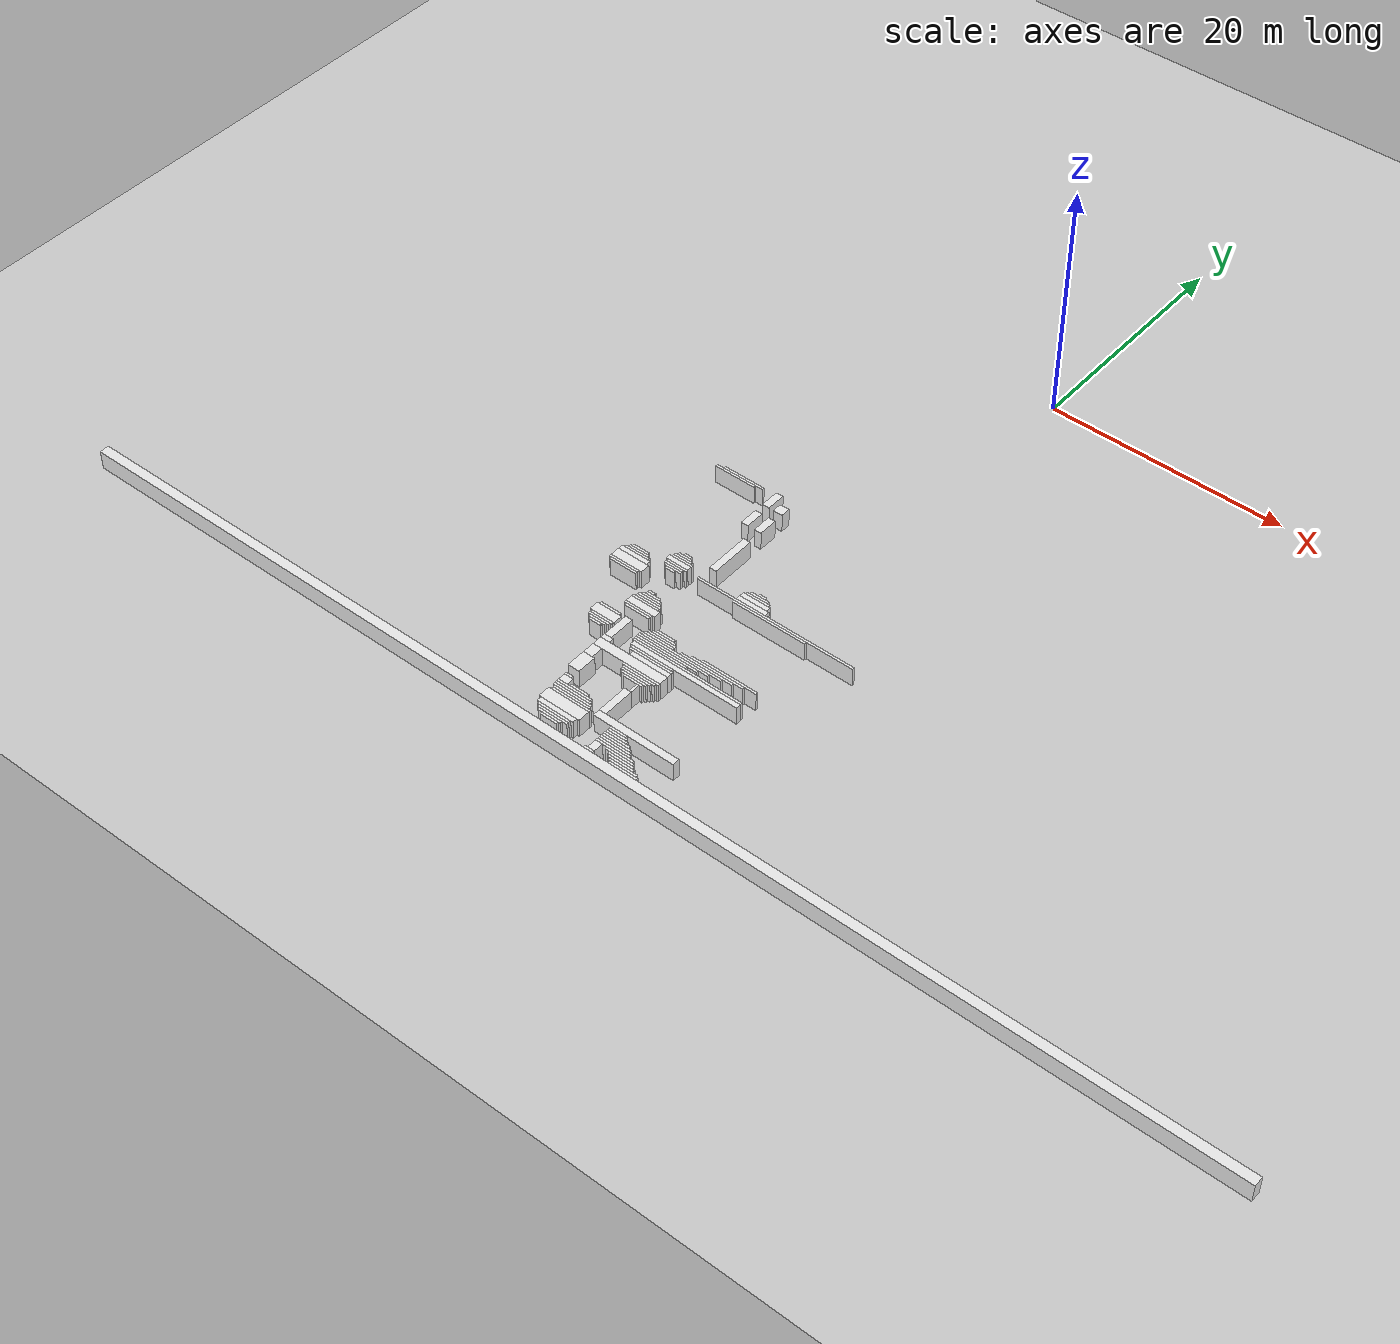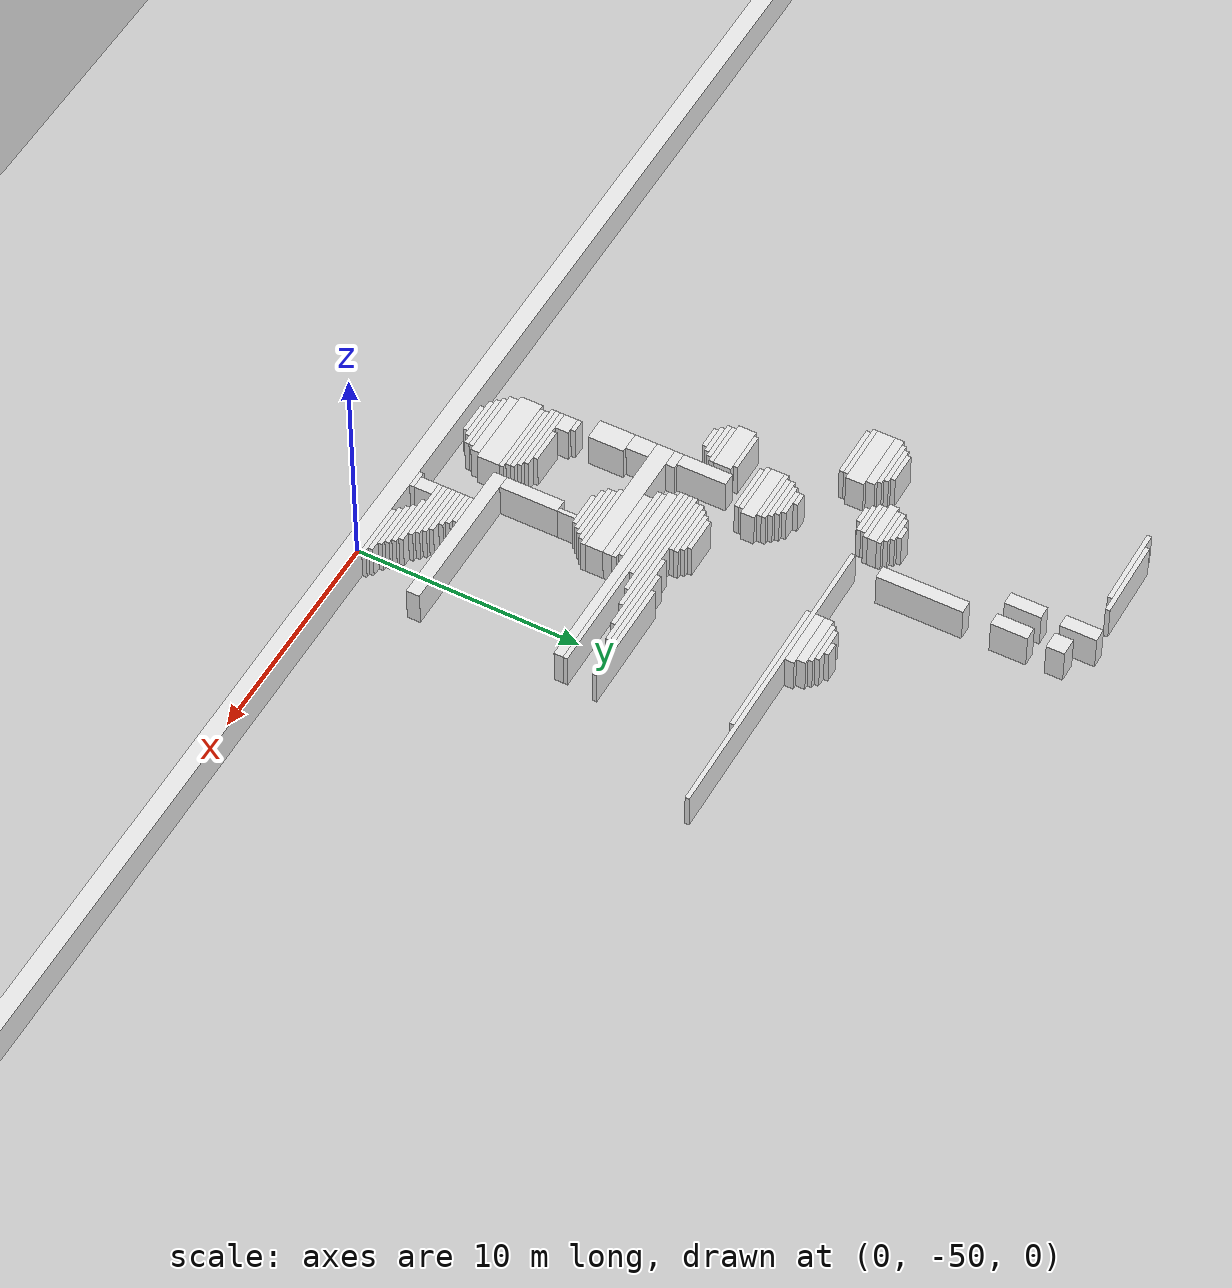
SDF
<sdf version="1.7">
 <world name="default">
  <model name="ground_plane">
   <static>1</static>
   <link name="link">
    <collision name="collision">
     <geometry><plane><normal>0 0 1</normal><size>120 120</size></plane></geometry>
    </collision>
    <visual name="visual">
     <geometry><plane><normal>0 0 1</normal><size>120 120</size></plane></geometry>
     <material>
      <script><uri>file://media/materials/scripts/gazebo.material</uri><name>Gazebo/Grey</name></script>
     </material>
    </visual>
   </link>
  </model>
  <model name="random_complex_01_model">
   <static>1</static>
   <link name="obs_2650">
    <pose>-12.0000 -22.1000 0.8000 0 0 0</pose>
    <collision name="obs_2650_col"><geometry><box><size>3.6000 0.2000 1.6000</size></box></geometry></collision>
    <visual name="obs_2650_vis">
     <geometry><box><size>3.6000 0.2000 1.6000</size></box></geometry>
     <material>
      <script><uri>file://media/materials/scripts/gazebo.material</uri><name>Gazebo/White</name></script>
     </material>
    </visual>
   </link>
   <link name="obs_2654">
    <pose>-12.6000 -22.3000 0.8000 0 0 0</pose>
    <collision name="obs_2654_col"><geometry><box><size>3.6000 0.2000 1.6000</size></box></geometry></collision>
    <visual name="obs_2654_vis">
     <geometry><box><size>3.6000 0.2000 1.6000</size></box></geometry>
     <material>
      <script><uri>file://media/materials/scripts/gazebo.material</uri><name>Gazebo/White</name></script>
     </material>
    </visual>
   </link>
   <link name="obs_2683">
    <pose>-8.9000 -22.6000 0.8000 0 0 0</pose>
    <collision name="obs_2683_col"><geometry><box><size>0.6000 1.6000 1.6000</size></box></geometry></collision>
    <visual name="obs_2683_vis">
     <geometry><box><size>0.6000 1.6000 1.6000</size></box></geometry>
     <material>
      <script><uri>file://media/materials/scripts/gazebo.material</uri><name>Gazebo/White</name></script>
     </material>
    </visual>
   </link>
   <link name="obs_2686">
    <pose>-7.8000 -23.0000 0.8000 0 0 0</pose>
    <collision name="obs_2686_col"><geometry><box><size>0.8000 0.8000 1.6000</size></box></geometry></collision>
    <visual name="obs_2686_vis">
     <geometry><box><size>0.8000 0.8000 1.6000</size></box></geometry>
     <material>
      <script><uri>file://media/materials/scripts/gazebo.material</uri><name>Gazebo/White</name></script>
     </material>
    </visual>
   </link>
   <link name="obs_2773">
    <pose>-8.9000 -25.0000 0.8000 0 0 0</pose>
    <collision name="obs_2773_col"><geometry><box><size>0.6000 1.6000 1.6000</size></box></geometry></collision>
    <visual name="obs_2773_vis">
     <geometry><box><size>0.6000 1.6000 1.6000</size></box></geometry>
     <material>
      <script><uri>file://media/materials/scripts/gazebo.material</uri><name>Gazebo/White</name></script>
     </material>
    </visual>
   </link>
   <link name="obs_2774">
    <pose>-7.7000 -25.0000 0.8000 0 0 0</pose>
    <collision name="obs_2774_col"><geometry><box><size>0.6000 1.6000 1.6000</size></box></geometry></collision>
    <visual name="obs_2774_vis">
     <geometry><box><size>0.6000 1.6000 1.6000</size></box></geometry>
     <material>
      <script><uri>file://media/materials/scripts/gazebo.material</uri><name>Gazebo/White</name></script>
     </material>
    </visual>
   </link>
   <link name="obs_2954">
    <pose>-7.7000 -28.9000 0.8000 0 0 0</pose>
    <collision name="obs_2954_col"><geometry><box><size>0.6000 3.8000 1.6000</size></box></geometry></collision>
    <visual name="obs_2954_vis">
     <geometry><box><size>0.6000 3.8000 1.6000</size></box></geometry>
     <material>
      <script><uri>file://media/materials/scripts/gazebo.material</uri><name>Gazebo/White</name></script>
     </material>
    </visual>
   </link>
   <link name="obs_2958">
    <pose>-3.3000 -30.7000 0.8000 0 0 0</pose>
    <collision name="obs_2958_col"><geometry><box><size>0.6000 0.2000 1.6000</size></box></geometry></collision>
    <visual name="obs_2958_vis">
     <geometry><box><size>0.6000 0.2000 1.6000</size></box></geometry>
     <material>
      <script><uri>file://media/materials/scripts/gazebo.material</uri><name>Gazebo/White</name></script>
     </material>
    </visual>
   </link>
   <link name="obs_2965">
    <pose>-9.9000 -30.9000 0.8000 0 0 0</pose>
    <collision name="obs_2965_col"><geometry><box><size>0.6000 0.2000 1.6000</size></box></geometry></collision>
    <visual name="obs_2965_vis">
     <geometry><box><size>0.6000 0.2000 1.6000</size></box></geometry>
     <material>
      <script><uri>file://media/materials/scripts/gazebo.material</uri><name>Gazebo/White</name></script>
     </material>
    </visual>
   </link>
   <link name="obs_2966">
    <pose>-3.4000 -30.9000 0.8000 0 0 0</pose>
    <collision name="obs_2966_col"><geometry><box><size>1.6000 0.2000 1.6000</size></box></geometry></collision>
    <visual name="obs_2966_vis">
     <geometry><box><size>1.6000 0.2000 1.6000</size></box></geometry>
     <material>
      <script><uri>file://media/materials/scripts/gazebo.material</uri><name>Gazebo/White</name></script>
     </material>
    </visual>
   </link>
   <link name="obs_2971">
    <pose>-10.0000 -31.1000 0.8000 0 0 0</pose>
    <collision name="obs_2971_col"><geometry><box><size>1.2000 0.2000 1.6000</size></box></geometry></collision>
    <visual name="obs_2971_vis">
     <geometry><box><size>1.2000 0.2000 1.6000</size></box></geometry>
     <material>
      <script><uri>file://media/materials/scripts/gazebo.material</uri><name>Gazebo/White</name></script>
     </material>
    </visual>
   </link>
   <link name="obs_2972">
    <pose>-3.4000 -31.1000 0.8000 0 0 0</pose>
    <collision name="obs_2972_col"><geometry><box><size>2.0000 0.2000 1.6000</size></box></geometry></collision>
    <visual name="obs_2972_vis">
     <geometry><box><size>2.0000 0.2000 1.6000</size></box></geometry>
     <material>
      <script><uri>file://media/materials/scripts/gazebo.material</uri><name>Gazebo/White</name></script>
     </material>
    </visual>
   </link>
   <link name="obs_2978">
    <pose>-10.0000 -31.3000 0.8000 0 0 0</pose>
    <collision name="obs_2978_col"><geometry><box><size>1.6000 0.2000 1.6000</size></box></geometry></collision>
    <visual name="obs_2978_vis">
     <geometry><box><size>1.6000 0.2000 1.6000</size></box></geometry>
     <material>
      <script><uri>file://media/materials/scripts/gazebo.material</uri><name>Gazebo/White</name></script>
     </material>
    </visual>
   </link>
   <link name="obs_2981">
    <pose>-3.4000 -31.4000 0.8000 0 0 0</pose>
    <collision name="obs_2981_col"><geometry><box><size>2.4000 0.4000 1.6000</size></box></geometry></collision>
    <visual name="obs_2981_vis">
     <geometry><box><size>2.4000 0.4000 1.6000</size></box></geometry>
     <material>
      <script><uri>file://media/materials/scripts/gazebo.material</uri><name>Gazebo/White</name></script>
     </material>
    </visual>
   </link>
   <link name="obs_2983">
    <pose>-9.9000 -31.5000 0.8000 0 0 0</pose>
    <collision name="obs_2983_col"><geometry><box><size>1.8000 0.2000 1.6000</size></box></geometry></collision>
    <visual name="obs_2983_vis">
     <geometry><box><size>1.8000 0.2000 1.6000</size></box></geometry>
     <material>
      <script><uri>file://media/materials/scripts/gazebo.material</uri><name>Gazebo/White</name></script>
     </material>
    </visual>
   </link>
   <link name="obs_2994">
    <pose>-10.0000 -31.8000 0.8000 0 0 0</pose>
    <collision name="obs_2994_col"><geometry><box><size>2.0000 0.4000 1.6000</size></box></geometry></collision>
    <visual name="obs_2994_vis">
     <geometry><box><size>2.0000 0.4000 1.6000</size></box></geometry>
     <material>
      <script><uri>file://media/materials/scripts/gazebo.material</uri><name>Gazebo/White</name></script>
     </material>
    </visual>
   </link>
   <link name="obs_2995">
    <pose>-3.3000 -31.8000 0.8000 0 0 0</pose>
    <collision name="obs_2995_col"><geometry><box><size>2.6000 0.4000 1.6000</size></box></geometry></collision>
    <visual name="obs_2995_vis">
     <geometry><box><size>2.6000 0.4000 1.6000</size></box></geometry>
     <material>
      <script><uri>file://media/materials/scripts/gazebo.material</uri><name>Gazebo/White</name></script>
     </material>
    </visual>
   </link>
   <link name="obs_3001">
    <pose>-9.9000 -32.1000 0.8000 0 0 0</pose>
    <collision name="obs_3001_col"><geometry><box><size>1.8000 0.2000 1.6000</size></box></geometry></collision>
    <visual name="obs_3001_vis">
     <geometry><box><size>1.8000 0.2000 1.6000</size></box></geometry>
     <material>
      <script><uri>file://media/materials/scripts/gazebo.material</uri><name>Gazebo/White</name></script>
     </material>
    </visual>
   </link>
   <link name="obs_3002">
    <pose>-1.1000 -32.1000 0.8000 0 0 0</pose>
    <collision name="obs_3002_col"><geometry><box><size>13.8000 0.2000 1.6000</size></box></geometry></collision>
    <visual name="obs_3002_vis">
     <geometry><box><size>13.8000 0.2000 1.6000</size></box></geometry>
     <material>
      <script><uri>file://media/materials/scripts/gazebo.material</uri><name>Gazebo/White</name></script>
     </material>
    </visual>
   </link>
   <link name="obs_3008">
    <pose>-10.0000 -32.3000 0.8000 0 0 0</pose>
    <collision name="obs_3008_col"><geometry><box><size>1.6000 0.2000 1.6000</size></box></geometry></collision>
    <visual name="obs_3008_vis">
     <geometry><box><size>1.6000 0.2000 1.6000</size></box></geometry>
     <material>
      <script><uri>file://media/materials/scripts/gazebo.material</uri><name>Gazebo/White</name></script>
     </material>
    </visual>
   </link>
   <link name="obs_3009">
    <pose>-1.4000 -32.3000 0.8000 0 0 0</pose>
    <collision name="obs_3009_col"><geometry><box><size>6.4000 0.2000 1.6000</size></box></geometry></collision>
    <visual name="obs_3009_vis">
     <geometry><box><size>6.4000 0.2000 1.6000</size></box></geometry>
     <material>
      <script><uri>file://media/materials/scripts/gazebo.material</uri><name>Gazebo/White</name></script>
     </material>
    </visual>
   </link>
   <link name="obs_3017">
    <pose>-12.9000 -32.5000 0.8000 0 0 0</pose>
    <collision name="obs_3017_col"><geometry><box><size>1.4000 0.2000 1.6000</size></box></geometry></collision>
    <visual name="obs_3017_vis">
     <geometry><box><size>1.4000 0.2000 1.6000</size></box></geometry>
     <material>
      <script><uri>file://media/materials/scripts/gazebo.material</uri><name>Gazebo/White</name></script>
     </material>
    </visual>
   </link>
   <link name="obs_3018">
    <pose>-9.9000 -32.5000 0.8000 0 0 0</pose>
    <collision name="obs_3018_col"><geometry><box><size>1.4000 0.2000 1.6000</size></box></geometry></collision>
    <visual name="obs_3018_vis">
     <geometry><box><size>1.4000 0.2000 1.6000</size></box></geometry>
     <material>
      <script><uri>file://media/materials/scripts/gazebo.material</uri><name>Gazebo/White</name></script>
     </material>
    </visual>
   </link>
   <link name="obs_3023">
    <pose>-12.9000 -32.7000 0.8000 0 0 0</pose>
    <collision name="obs_3023_col"><geometry><box><size>1.8000 0.2000 1.6000</size></box></geometry></collision>
    <visual name="obs_3023_vis">
     <geometry><box><size>1.8000 0.2000 1.6000</size></box></geometry>
     <material>
      <script><uri>file://media/materials/scripts/gazebo.material</uri><name>Gazebo/White</name></script>
     </material>
    </visual>
   </link>
   <link name="obs_3024">
    <pose>-10.0000 -32.7000 0.8000 0 0 0</pose>
    <collision name="obs_3024_col"><geometry><box><size>0.8000 0.2000 1.6000</size></box></geometry></collision>
    <visual name="obs_3024_vis">
     <geometry><box><size>0.8000 0.2000 1.6000</size></box></geometry>
     <material>
      <script><uri>file://media/materials/scripts/gazebo.material</uri><name>Gazebo/White</name></script>
     </material>
    </visual>
   </link>
   <link name="obs_3032">
    <pose>-12.9000 -32.9000 0.8000 0 0 0</pose>
    <collision name="obs_3032_col"><geometry><box><size>2.2000 0.2000 1.6000</size></box></geometry></collision>
    <visual name="obs_3032_vis">
     <geometry><box><size>2.2000 0.2000 1.6000</size></box></geometry>
     <material>
      <script><uri>file://media/materials/scripts/gazebo.material</uri><name>Gazebo/White</name></script>
     </material>
    </visual>
   </link>
   <link name="obs_3044">
    <pose>-12.9000 -33.2000 0.8000 0 0 0</pose>
    <collision name="obs_3044_col"><geometry><box><size>2.6000 0.4000 1.6000</size></box></geometry></collision>
    <visual name="obs_3044_vis">
     <geometry><box><size>2.6000 0.4000 1.6000</size></box></geometry>
     <material>
      <script><uri>file://media/materials/scripts/gazebo.material</uri><name>Gazebo/White</name></script>
     </material>
    </visual>
   </link>
   <link name="obs_3077">
    <pose>-12.8000 -33.8000 0.8000 0 0 0</pose>
    <collision name="obs_3077_col"><geometry><box><size>2.8000 0.8000 1.6000</size></box></geometry></collision>
    <visual name="obs_3077_vis">
     <geometry><box><size>2.8000 0.8000 1.6000</size></box></geometry>
     <material>
      <script><uri>file://media/materials/scripts/gazebo.material</uri><name>Gazebo/White</name></script>
     </material>
    </visual>
   </link>
   <link name="obs_3088">
    <pose>-12.9000 -34.3000 0.8000 0 0 0</pose>
    <collision name="obs_3088_col"><geometry><box><size>2.6000 0.2000 1.6000</size></box></geometry></collision>
    <visual name="obs_3088_vis">
     <geometry><box><size>2.6000 0.2000 1.6000</size></box></geometry>
     <material>
      <script><uri>file://media/materials/scripts/gazebo.material</uri><name>Gazebo/White</name></script>
     </material>
    </visual>
   </link>
   <link name="obs_3093">
    <pose>-12.8000 -34.5000 0.8000 0 0 0</pose>
    <collision name="obs_3093_col"><geometry><box><size>2.4000 0.2000 1.6000</size></box></geometry></collision>
    <visual name="obs_3093_vis">
     <geometry><box><size>2.4000 0.2000 1.6000</size></box></geometry>
     <material>
      <script><uri>file://media/materials/scripts/gazebo.material</uri><name>Gazebo/White</name></script>
     </material>
    </visual>
   </link>
   <link name="obs_3124">
    <pose>-9.5000 -35.3000 0.8000 0 0 0</pose>
    <collision name="obs_3124_col"><geometry><box><size>0.6000 0.2000 1.6000</size></box></geometry></collision>
    <visual name="obs_3124_vis">
     <geometry><box><size>0.6000 0.2000 1.6000</size></box></geometry>
     <material>
      <script><uri>file://media/materials/scripts/gazebo.material</uri><name>Gazebo/White</name></script>
     </material>
    </visual>
   </link>
   <link name="obs_3133">
    <pose>-9.2000 -35.5000 0.8000 0 0 0</pose>
    <collision name="obs_3133_col"><geometry><box><size>1.2000 0.2000 1.6000</size></box></geometry></collision>
    <visual name="obs_3133_vis">
     <geometry><box><size>1.2000 0.2000 1.6000</size></box></geometry>
     <material>
      <script><uri>file://media/materials/scripts/gazebo.material</uri><name>Gazebo/White</name></script>
     </material>
    </visual>
   </link>
   <link name="obs_3143">
    <pose>-9.2000 -35.7000 0.8000 0 0 0</pose>
    <collision name="obs_3143_col"><geometry><box><size>1.6000 0.2000 1.6000</size></box></geometry></collision>
    <visual name="obs_3143_vis">
     <geometry><box><size>1.6000 0.2000 1.6000</size></box></geometry>
     <material>
      <script><uri>file://media/materials/scripts/gazebo.material</uri><name>Gazebo/White</name></script>
     </material>
    </visual>
   </link>
   <link name="obs_3149">
    <pose>-9.2000 -35.9000 0.8000 0 0 0</pose>
    <collision name="obs_3149_col"><geometry><box><size>2.0000 0.2000 1.6000</size></box></geometry></collision>
    <visual name="obs_3149_vis">
     <geometry><box><size>2.0000 0.2000 1.6000</size></box></geometry>
     <material>
      <script><uri>file://media/materials/scripts/gazebo.material</uri><name>Gazebo/White</name></script>
     </material>
    </visual>
   </link>
   <link name="obs_3158">
    <pose>-9.1000 -36.1000 0.8000 0 0 0</pose>
    <collision name="obs_3158_col"><geometry><box><size>2.2000 0.2000 1.6000</size></box></geometry></collision>
    <visual name="obs_3158_vis">
     <geometry><box><size>2.2000 0.2000 1.6000</size></box></geometry>
     <material>
      <script><uri>file://media/materials/scripts/gazebo.material</uri><name>Gazebo/White</name></script>
     </material>
    </visual>
   </link>
   <link name="obs_3165">
    <pose>-9.2000 -36.3000 0.8000 0 0 0</pose>
    <collision name="obs_3165_col"><geometry><box><size>2.4000 0.2000 1.6000</size></box></geometry></collision>
    <visual name="obs_3165_vis">
     <geometry><box><size>2.4000 0.2000 1.6000</size></box></geometry>
     <material>
      <script><uri>file://media/materials/scripts/gazebo.material</uri><name>Gazebo/White</name></script>
     </material>
    </visual>
   </link>
   <link name="obs_3182">
    <pose>-9.1000 -36.7000 0.8000 0 0 0</pose>
    <collision name="obs_3182_col"><geometry><box><size>2.6000 0.6000 1.6000</size></box></geometry></collision>
    <visual name="obs_3182_vis">
     <geometry><box><size>2.6000 0.6000 1.6000</size></box></geometry>
     <material>
      <script><uri>file://media/materials/scripts/gazebo.material</uri><name>Gazebo/White</name></script>
     </material>
    </visual>
   </link>
   <link name="obs_3190">
    <pose>-9.2000 -37.1000 0.8000 0 0 0</pose>
    <collision name="obs_3190_col"><geometry><box><size>2.4000 0.2000 1.6000</size></box></geometry></collision>
    <visual name="obs_3190_vis">
     <geometry><box><size>2.4000 0.2000 1.6000</size></box></geometry>
     <material>
      <script><uri>file://media/materials/scripts/gazebo.material</uri><name>Gazebo/White</name></script>
     </material>
    </visual>
   </link>
   <link name="obs_3200">
    <pose>-9.1000 -37.3000 0.8000 0 0 0</pose>
    <collision name="obs_3200_col"><geometry><box><size>2.2000 0.2000 1.6000</size></box></geometry></collision>
    <visual name="obs_3200_vis">
     <geometry><box><size>2.2000 0.2000 1.6000</size></box></geometry>
     <material>
      <script><uri>file://media/materials/scripts/gazebo.material</uri><name>Gazebo/White</name></script>
     </material>
    </visual>
   </link>
   <link name="obs_3223">
    <pose>-6.0000 -37.9000 0.8000 0 0 0</pose>
    <collision name="obs_3223_col"><geometry><box><size>1.6000 0.2000 1.6000</size></box></geometry></collision>
    <visual name="obs_3223_vis">
     <geometry><box><size>1.6000 0.2000 1.6000</size></box></geometry>
     <material>
      <script><uri>file://media/materials/scripts/gazebo.material</uri><name>Gazebo/White</name></script>
     </material>
    </visual>
   </link>
   <link name="obs_3231">
    <pose>-6.0000 -38.1000 0.8000 0 0 0</pose>
    <collision name="obs_3231_col"><geometry><box><size>2.0000 0.2000 1.6000</size></box></geometry></collision>
    <visual name="obs_3231_vis">
     <geometry><box><size>2.0000 0.2000 1.6000</size></box></geometry>
     <material>
      <script><uri>file://media/materials/scripts/gazebo.material</uri><name>Gazebo/White</name></script>
     </material>
    </visual>
   </link>
   <link name="obs_3232">
    <pose>-0.2000 -38.1000 0.8000 0 0 0</pose>
    <collision name="obs_3232_col"><geometry><box><size>4.8000 0.2000 1.6000</size></box></geometry></collision>
    <visual name="obs_3232_vis">
     <geometry><box><size>4.8000 0.2000 1.6000</size></box></geometry>
     <material>
      <script><uri>file://media/materials/scripts/gazebo.material</uri><name>Gazebo/White</name></script>
     </material>
    </visual>
   </link>
   <link name="obs_3239">
    <pose>-10.7000 -38.3000 0.8000 0 0 0</pose>
    <collision name="obs_3239_col"><geometry><box><size>1.8000 0.2000 1.6000</size></box></geometry></collision>
    <visual name="obs_3239_vis">
     <geometry><box><size>1.8000 0.2000 1.6000</size></box></geometry>
     <material>
      <script><uri>file://media/materials/scripts/gazebo.material</uri><name>Gazebo/White</name></script>
     </material>
    </visual>
   </link>
   <link name="obs_3240">
    <pose>-6.0000 -38.3000 0.8000 0 0 0</pose>
    <collision name="obs_3240_col"><geometry><box><size>2.4000 0.2000 1.6000</size></box></geometry></collision>
    <visual name="obs_3240_vis">
     <geometry><box><size>2.4000 0.2000 1.6000</size></box></geometry>
     <material>
      <script><uri>file://media/materials/scripts/gazebo.material</uri><name>Gazebo/White</name></script>
     </material>
    </visual>
   </link>
   <link name="obs_3241">
    <pose>-1.1000 -38.3000 0.8000 0 0 0</pose>
    <collision name="obs_3241_col"><geometry><box><size>4.6000 0.2000 1.6000</size></box></geometry></collision>
    <visual name="obs_3241_vis">
     <geometry><box><size>4.6000 0.2000 1.6000</size></box></geometry>
     <material>
      <script><uri>file://media/materials/scripts/gazebo.material</uri><name>Gazebo/White</name></script>
     </material>
    </visual>
   </link>
   <link name="obs_3248">
    <pose>-6.1000 -38.5000 0.8000 0 0 0</pose>
    <collision name="obs_3248_col"><geometry><box><size>2.6000 0.2000 1.6000</size></box></geometry></collision>
    <visual name="obs_3248_vis">
     <geometry><box><size>2.6000 0.2000 1.6000</size></box></geometry>
     <material>
      <script><uri>file://media/materials/scripts/gazebo.material</uri><name>Gazebo/White</name></script>
     </material>
    </visual>
   </link>
   <link name="obs_3249">
    <pose>-1.9000 -38.5000 0.8000 0 0 0</pose>
    <collision name="obs_3249_col"><geometry><box><size>4.6000 0.2000 1.6000</size></box></geometry></collision>
    <visual name="obs_3249_vis">
     <geometry><box><size>4.6000 0.2000 1.6000</size></box></geometry>
     <material>
      <script><uri>file://media/materials/scripts/gazebo.material</uri><name>Gazebo/White</name></script>
     </material>
    </visual>
   </link>
   <link name="obs_3254">
    <pose>-3.9000 -38.7000 0.8000 0 0 0</pose>
    <collision name="obs_3254_col"><geometry><box><size>7.0000 0.2000 1.6000</size></box></geometry></collision>
    <visual name="obs_3254_vis">
     <geometry><box><size>7.0000 0.2000 1.6000</size></box></geometry>
     <material>
      <script><uri>file://media/materials/scripts/gazebo.material</uri><name>Gazebo/White</name></script>
     </material>
    </visual>
   </link>
   <link name="obs_3261">
    <pose>-4.5000 -38.9000 0.8000 0 0 0</pose>
    <collision name="obs_3261_col"><geometry><box><size>6.2000 0.2000 1.6000</size></box></geometry></collision>
    <visual name="obs_3261_vis">
     <geometry><box><size>6.2000 0.2000 1.6000</size></box></geometry>
     <material>
      <script><uri>file://media/materials/scripts/gazebo.material</uri><name>Gazebo/White</name></script>
     </material>
    </visual>
   </link>
   <link name="obs_3266">
    <pose>-10.7000 -38.8000 0.8000 0 0 0</pose>
    <collision name="obs_3266_col"><geometry><box><size>2.2000 0.8000 1.6000</size></box></geometry></collision>
    <visual name="obs_3266_vis">
     <geometry><box><size>2.2000 0.8000 1.6000</size></box></geometry>
     <material>
      <script><uri>file://media/materials/scripts/gazebo.material</uri><name>Gazebo/White</name></script>
     </material>
    </visual>
   </link>
   <link name="obs_3269">
    <pose>-4.9000 -39.1000 0.8000 0 0 0</pose>
    <collision name="obs_3269_col"><geometry><box><size>5.4000 0.2000 1.6000</size></box></geometry></collision>
    <visual name="obs_3269_vis">
     <geometry><box><size>5.4000 0.2000 1.6000</size></box></geometry>
     <material>
      <script><uri>file://media/materials/scripts/gazebo.material</uri><name>Gazebo/White</name></script>
     </material>
    </visual>
   </link>
   <link name="obs_3276">
    <pose>-10.6000 -39.3000 0.8000 0 0 0</pose>
    <collision name="obs_3276_col"><geometry><box><size>2.0000 0.2000 1.6000</size></box></geometry></collision>
    <visual name="obs_3276_vis">
     <geometry><box><size>2.0000 0.2000 1.6000</size></box></geometry>
     <material>
      <script><uri>file://media/materials/scripts/gazebo.material</uri><name>Gazebo/White</name></script>
     </material>
    </visual>
   </link>
   <link name="obs_3277">
    <pose>-5.3000 -39.3000 0.8000 0 0 0</pose>
    <collision name="obs_3277_col"><geometry><box><size>4.6000 0.2000 1.6000</size></box></geometry></collision>
    <visual name="obs_3277_vis">
     <geometry><box><size>4.6000 0.2000 1.6000</size></box></geometry>
     <material>
      <script><uri>file://media/materials/scripts/gazebo.material</uri><name>Gazebo/White</name></script>
     </material>
    </visual>
   </link>
   <link name="obs_3280">
    <pose>-10.7000 -39.5000 0.8000 0 0 0</pose>
    <collision name="obs_3280_col"><geometry><box><size>1.8000 0.2000 1.6000</size></box></geometry></collision>
    <visual name="obs_3280_vis">
     <geometry><box><size>1.8000 0.2000 1.6000</size></box></geometry>
     <material>
      <script><uri>file://media/materials/scripts/gazebo.material</uri><name>Gazebo/White</name></script>
     </material>
    </visual>
   </link>
   <link name="obs_3281">
    <pose>-2.8000 -39.5000 0.8000 0 0 0</pose>
    <collision name="obs_3281_col"><geometry><box><size>9.6000 0.2000 1.6000</size></box></geometry></collision>
    <visual name="obs_3281_vis">
     <geometry><box><size>9.6000 0.2000 1.6000</size></box></geometry>
     <material>
      <script><uri>file://media/materials/scripts/gazebo.material</uri><name>Gazebo/White</name></script>
     </material>
    </visual>
   </link>
   <link name="obs_3289">
    <pose>-10.7000 -39.7000 0.8000 0 0 0</pose>
    <collision name="obs_3289_col"><geometry><box><size>1.4000 0.2000 1.6000</size></box></geometry></collision>
    <visual name="obs_3289_vis">
     <geometry><box><size>1.4000 0.2000 1.6000</size></box></geometry>
     <material>
      <script><uri>file://media/materials/scripts/gazebo.material</uri><name>Gazebo/White</name></script>
     </material>
    </visual>
   </link>
   <link name="obs_3292">
    <pose>-2.7000 -39.8000 0.8000 0 0 0</pose>
    <collision name="obs_3292_col"><geometry><box><size>9.4000 0.4000 1.6000</size></box></geometry></collision>
    <visual name="obs_3292_vis">
     <geometry><box><size>9.4000 0.4000 1.6000</size></box></geometry>
     <material>
      <script><uri>file://media/materials/scripts/gazebo.material</uri><name>Gazebo/White</name></script>
     </material>
    </visual>
   </link>
   <link name="obs_3295">
    <pose>-10.7000 -39.9000 0.8000 0 0 0</pose>
    <collision name="obs_3295_col"><geometry><box><size>1.0000 0.2000 1.6000</size></box></geometry></collision>
    <visual name="obs_3295_vis">
     <geometry><box><size>1.0000 0.2000 1.6000</size></box></geometry>
     <material>
      <script><uri>file://media/materials/scripts/gazebo.material</uri><name>Gazebo/White</name></script>
     </material>
    </visual>
   </link>
   <link name="obs_3302">
    <pose>-5.4000 -40.1000 0.8000 0 0 0</pose>
    <collision name="obs_3302_col"><geometry><box><size>3.6000 0.2000 1.6000</size></box></geometry></collision>
    <visual name="obs_3302_vis">
     <geometry><box><size>3.6000 0.2000 1.6000</size></box></geometry>
     <material>
      <script><uri>file://media/materials/scripts/gazebo.material</uri><name>Gazebo/White</name></script>
     </material>
    </visual>
   </link>
   <link name="obs_3306">
    <pose>-9.1000 -39.3000 0.8000 0 0 0</pose>
    <collision name="obs_3306_col"><geometry><box><size>0.6000 2.2000 1.6000</size></box></geometry></collision>
    <visual name="obs_3306_vis">
     <geometry><box><size>0.6000 2.2000 1.6000</size></box></geometry>
     <material>
      <script><uri>file://media/materials/scripts/gazebo.material</uri><name>Gazebo/White</name></script>
     </material>
    </visual>
   </link>
   <link name="obs_3310">
    <pose>-5.3000 -40.3000 0.8000 0 0 0</pose>
    <collision name="obs_3310_col"><geometry><box><size>3.8000 0.2000 1.6000</size></box></geometry></collision>
    <visual name="obs_3310_vis">
     <geometry><box><size>3.8000 0.2000 1.6000</size></box></geometry>
     <material>
      <script><uri>file://media/materials/scripts/gazebo.material</uri><name>Gazebo/White</name></script>
     </material>
    </visual>
   </link>
   <link name="obs_3321">
    <pose>-9.0000 -40.6000 0.8000 0 0 0</pose>
    <collision name="obs_3321_col"><geometry><box><size>0.8000 0.4000 1.6000</size></box></geometry></collision>
    <visual name="obs_3321_vis">
     <geometry><box><size>0.8000 0.4000 1.6000</size></box></geometry>
     <material>
      <script><uri>file://media/materials/scripts/gazebo.material</uri><name>Gazebo/White</name></script>
     </material>
    </visual>
   </link>
   <link name="obs_3322">
    <pose>-5.1000 -40.6000 0.8000 0 0 0</pose>
    <collision name="obs_3322_col"><geometry><box><size>3.4000 0.4000 1.6000</size></box></geometry></collision>
    <visual name="obs_3322_vis">
     <geometry><box><size>3.4000 0.4000 1.6000</size></box></geometry>
     <material>
      <script><uri>file://media/materials/scripts/gazebo.material</uri><name>Gazebo/White</name></script>
     </material>
    </visual>
   </link>
   <link name="obs_3354">
    <pose>-6.4000 -41.2000 0.8000 0 0 0</pose>
    <collision name="obs_3354_col"><geometry><box><size>6.0000 0.8000 1.6000</size></box></geometry></collision>
    <visual name="obs_3354_vis">
     <geometry><box><size>6.0000 0.8000 1.6000</size></box></geometry>
     <material>
      <script><uri>file://media/materials/scripts/gazebo.material</uri><name>Gazebo/White</name></script>
     </material>
    </visual>
   </link>
   <link name="obs_3365">
    <pose>-5.0000 -41.7000 0.8000 0 0 0</pose>
    <collision name="obs_3365_col"><geometry><box><size>3.2000 0.2000 1.6000</size></box></geometry></collision>
    <visual name="obs_3365_vis">
     <geometry><box><size>3.2000 0.2000 1.6000</size></box></geometry>
     <material>
      <script><uri>file://media/materials/scripts/gazebo.material</uri><name>Gazebo/White</name></script>
     </material>
    </visual>
   </link>
   <link name="obs_3374">
    <pose>-5.0000 -41.9000 0.8000 0 0 0</pose>
    <collision name="obs_3374_col"><geometry><box><size>2.8000 0.2000 1.6000</size></box></geometry></collision>
    <visual name="obs_3374_vis">
     <geometry><box><size>2.8000 0.2000 1.6000</size></box></geometry>
     <material>
      <script><uri>file://media/materials/scripts/gazebo.material</uri><name>Gazebo/White</name></script>
     </material>
    </visual>
   </link>
   <link name="obs_3381">
    <pose>-5.1000 -42.1000 0.8000 0 0 0</pose>
    <collision name="obs_3381_col"><geometry><box><size>2.6000 0.2000 1.6000</size></box></geometry></collision>
    <visual name="obs_3381_vis">
     <geometry><box><size>2.6000 0.2000 1.6000</size></box></geometry>
     <material>
      <script><uri>file://media/materials/scripts/gazebo.material</uri><name>Gazebo/White</name></script>
     </material>
    </visual>
   </link>
   <link name="obs_3389">
    <pose>-5.1000 -42.3000 0.8000 0 0 0</pose>
    <collision name="obs_3389_col"><geometry><box><size>2.2000 0.2000 1.6000</size></box></geometry></collision>
    <visual name="obs_3389_vis">
     <geometry><box><size>2.2000 0.2000 1.6000</size></box></geometry>
     <material>
      <script><uri>file://media/materials/scripts/gazebo.material</uri><name>Gazebo/White</name></script>
     </material>
    </visual>
   </link>
   <link name="obs_3394">
    <pose>-9.0000 -42.1000 0.8000 0 0 0</pose>
    <collision name="obs_3394_col"><geometry><box><size>0.8000 1.0000 1.6000</size></box></geometry></collision>
    <visual name="obs_3394_vis">
     <geometry><box><size>0.8000 1.0000 1.6000</size></box></geometry>
     <material>
      <script><uri>file://media/materials/scripts/gazebo.material</uri><name>Gazebo/White</name></script>
     </material>
    </visual>
   </link>
   <link name="obs_3397">
    <pose>-5.0000 -42.5000 0.8000 0 0 0</pose>
    <collision name="obs_3397_col"><geometry><box><size>1.6000 0.2000 1.6000</size></box></geometry></collision>
    <visual name="obs_3397_vis">
     <geometry><box><size>1.6000 0.2000 1.6000</size></box></geometry>
     <material>
      <script><uri>file://media/materials/scripts/gazebo.material</uri><name>Gazebo/White</name></script>
     </material>
    </visual>
   </link>
   <link name="obs_3422">
    <pose>-4.5000 -43.0000 0.8000 0 0 0</pose>
    <collision name="obs_3422_col"><geometry><box><size>0.2000 0.8000 1.6000</size></box></geometry></collision>
    <visual name="obs_3422_vis">
     <geometry><box><size>0.2000 0.8000 1.6000</size></box></geometry>
     <material>
      <script><uri>file://media/materials/scripts/gazebo.material</uri><name>Gazebo/White</name></script>
     </material>
    </visual>
   </link>
   <link name="obs_3443">
    <pose>-8.9000 -43.4000 0.8000 0 0 0</pose>
    <collision name="obs_3443_col"><geometry><box><size>1.0000 1.6000 1.6000</size></box></geometry></collision>
    <visual name="obs_3443_vis">
     <geometry><box><size>1.0000 1.6000 1.6000</size></box></geometry>
     <material>
      <script><uri>file://media/materials/scripts/gazebo.material</uri><name>Gazebo/White</name></script>
     </material>
    </visual>
   </link>
   <link name="obs_3466">
    <pose>-8.7000 -44.9000 0.8000 0 0 0</pose>
    <collision name="obs_3466_col"><geometry><box><size>0.6000 0.2000 1.6000</size></box></geometry></collision>
    <visual name="obs_3466_vis">
     <geometry><box><size>0.6000 0.2000 1.6000</size></box></geometry>
     <material>
      <script><uri>file://media/materials/scripts/gazebo.material</uri><name>Gazebo/White</name></script>
     </material>
    </visual>
   </link>
   <link name="obs_3488">
    <pose>-8.6000 -45.3000 0.8000 0 0 0</pose>
    <collision name="obs_3488_col"><geometry><box><size>0.8000 0.6000 1.6000</size></box></geometry></collision>
    <visual name="obs_3488_vis">
     <geometry><box><size>0.8000 0.6000 1.6000</size></box></geometry>
     <material>
      <script><uri>file://media/materials/scripts/gazebo.material</uri><name>Gazebo/White</name></script>
     </material>
    </visual>
   </link>
   <link name="obs_3491">
    <pose>-7.2000 -45.5000 0.8000 0 0 0</pose>
    <collision name="obs_3491_col"><geometry><box><size>1.6000 0.2000 1.6000</size></box></geometry></collision>
    <visual name="obs_3491_vis">
     <geometry><box><size>1.6000 0.2000 1.6000</size></box></geometry>
     <material>
      <script><uri>file://media/materials/scripts/gazebo.material</uri><name>Gazebo/White</name></script>
     </material>
    </visual>
   </link>
   <link name="obs_3501">
    <pose>-7.5000 -45.7000 0.8000 0 0 0</pose>
    <collision name="obs_3501_col"><geometry><box><size>3.0000 0.2000 1.6000</size></box></geometry></collision>
    <visual name="obs_3501_vis">
     <geometry><box><size>3.0000 0.2000 1.6000</size></box></geometry>
     <material>
      <script><uri>file://media/materials/scripts/gazebo.material</uri><name>Gazebo/White</name></script>
     </material>
    </visual>
   </link>
   <link name="obs_3505">
    <pose>-4.7000 -44.7000 0.8000 0 0 0</pose>
    <collision name="obs_3505_col"><geometry><box><size>0.6000 2.6000 1.6000</size></box></geometry></collision>
    <visual name="obs_3505_vis">
     <geometry><box><size>0.6000 2.6000 1.6000</size></box></geometry>
     <material>
      <script><uri>file://media/materials/scripts/gazebo.material</uri><name>Gazebo/White</name></script>
     </material>
    </visual>
   </link>
   <link name="obs_3509">
    <pose>-7.4000 -45.9000 0.8000 0 0 0</pose>
    <collision name="obs_3509_col"><geometry><box><size>3.2000 0.2000 1.6000</size></box></geometry></collision>
    <visual name="obs_3509_vis">
     <geometry><box><size>3.2000 0.2000 1.6000</size></box></geometry>
     <material>
      <script><uri>file://media/materials/scripts/gazebo.material</uri><name>Gazebo/White</name></script>
     </material>
    </visual>
   </link>
   <link name="obs_3515">
    <pose>-7.3000 -46.1000 0.8000 0 0 0</pose>
    <collision name="obs_3515_col"><geometry><box><size>3.4000 0.2000 1.6000</size></box></geometry></collision>
    <visual name="obs_3515_vis">
     <geometry><box><size>3.4000 0.2000 1.6000</size></box></geometry>
     <material>
      <script><uri>file://media/materials/scripts/gazebo.material</uri><name>Gazebo/White</name></script>
     </material>
    </visual>
   </link>
   <link name="obs_3519">
    <pose>-7.2000 -46.3000 0.8000 0 0 0</pose>
    <collision name="obs_3519_col"><geometry><box><size>3.2000 0.2000 1.6000</size></box></geometry></collision>
    <visual name="obs_3519_vis">
     <geometry><box><size>3.2000 0.2000 1.6000</size></box></geometry>
     <material>
      <script><uri>file://media/materials/scripts/gazebo.material</uri><name>Gazebo/White</name></script>
     </material>
    </visual>
   </link>
   <link name="obs_3524">
    <pose>-1.5000 -46.3000 0.8000 0 0 0</pose>
    <collision name="obs_3524_col"><geometry><box><size>7.0000 0.6000 1.6000</size></box></geometry></collision>
    <visual name="obs_3524_vis">
     <geometry><box><size>7.0000 0.6000 1.6000</size></box></geometry>
     <material>
      <script><uri>file://media/materials/scripts/gazebo.material</uri><name>Gazebo/White</name></script>
     </material>
    </visual>
   </link>
   <link name="obs_3529">
    <pose>-7.1000 -46.5000 0.8000 0 0 0</pose>
    <collision name="obs_3529_col"><geometry><box><size>3.4000 0.2000 1.6000</size></box></geometry></collision>
    <visual name="obs_3529_vis">
     <geometry><box><size>3.4000 0.2000 1.6000</size></box></geometry>
     <material>
      <script><uri>file://media/materials/scripts/gazebo.material</uri><name>Gazebo/White</name></script>
     </material>
    </visual>
   </link>
   <link name="obs_3533">
    <pose>-2.7000 -46.7000 0.8000 0 0 0</pose>
    <collision name="obs_3533_col"><geometry><box><size>1.4000 0.2000 1.6000</size></box></geometry></collision>
    <visual name="obs_3533_vis">
     <geometry><box><size>1.4000 0.2000 1.6000</size></box></geometry>
     <material>
      <script><uri>file://media/materials/scripts/gazebo.material</uri><name>Gazebo/White</name></script>
     </material>
    </visual>
   </link>
   <link name="obs_3541">
    <pose>-2.6000 -46.9000 0.8000 0 0 0</pose>
    <collision name="obs_3541_col"><geometry><box><size>1.6000 0.2000 1.6000</size></box></geometry></collision>
    <visual name="obs_3541_vis">
     <geometry><box><size>1.6000 0.2000 1.6000</size></box></geometry>
     <material>
      <script><uri>file://media/materials/scripts/gazebo.material</uri><name>Gazebo/White</name></script>
     </material>
    </visual>
   </link>
   <link name="obs_3549">
    <pose>-2.5000 -47.1000 0.8000 0 0 0</pose>
    <collision name="obs_3549_col"><geometry><box><size>1.8000 0.2000 1.6000</size></box></geometry></collision>
    <visual name="obs_3549_vis">
     <geometry><box><size>1.8000 0.2000 1.6000</size></box></geometry>
     <material>
      <script><uri>file://media/materials/scripts/gazebo.material</uri><name>Gazebo/White</name></script>
     </material>
    </visual>
   </link>
   <link name="obs_3557">
    <pose>-2.3000 -47.3000 0.8000 0 0 0</pose>
    <collision name="obs_3557_col"><geometry><box><size>2.2000 0.2000 1.6000</size></box></geometry></collision>
    <visual name="obs_3557_vis">
     <geometry><box><size>2.2000 0.2000 1.6000</size></box></geometry>
     <material>
      <script><uri>file://media/materials/scripts/gazebo.material</uri><name>Gazebo/White</name></script>
     </material>
    </visual>
   </link>
   <link name="obs_3559">
    <pose>-7.2000 -47.1000 0.8000 0 0 0</pose>
    <collision name="obs_3559_col"><geometry><box><size>3.6000 1.0000 1.6000</size></box></geometry></collision>
    <visual name="obs_3559_vis">
     <geometry><box><size>3.6000 1.0000 1.6000</size></box></geometry>
     <material>
      <script><uri>file://media/materials/scripts/gazebo.material</uri><name>Gazebo/White</name></script>
     </material>
    </visual>
   </link>
   <link name="obs_3565">
    <pose>-2.2000 -47.5000 0.8000 0 0 0</pose>
    <collision name="obs_3565_col"><geometry><box><size>2.4000 0.2000 1.6000</size></box></geometry></collision>
    <visual name="obs_3565_vis">
     <geometry><box><size>2.4000 0.2000 1.6000</size></box></geometry>
     <material>
      <script><uri>file://media/materials/scripts/gazebo.material</uri><name>Gazebo/White</name></script>
     </material>
    </visual>
   </link>
   <link name="obs_3573">
    <pose>-2.1000 -47.7000 0.8000 0 0 0</pose>
    <collision name="obs_3573_col"><geometry><box><size>2.6000 0.2000 1.6000</size></box></geometry></collision>
    <visual name="obs_3573_vis">
     <geometry><box><size>2.6000 0.2000 1.6000</size></box></geometry>
     <material>
      <script><uri>file://media/materials/scripts/gazebo.material</uri><name>Gazebo/White</name></script>
     </material>
    </visual>
   </link>
   <link name="obs_3575">
    <pose>-7.2000 -47.8000 0.8000 0 0 0</pose>
    <collision name="obs_3575_col"><geometry><box><size>3.2000 0.4000 1.6000</size></box></geometry></collision>
    <visual name="obs_3575_vis">
     <geometry><box><size>3.2000 0.4000 1.6000</size></box></geometry>
     <material>
      <script><uri>file://media/materials/scripts/gazebo.material</uri><name>Gazebo/White</name></script>
     </material>
    </visual>
   </link>
   <link name="obs_3581">
    <pose>-2.0000 -47.9000 0.8000 0 0 0</pose>
    <collision name="obs_3581_col"><geometry><box><size>2.8000 0.2000 1.6000</size></box></geometry></collision>
    <visual name="obs_3581_vis">
     <geometry><box><size>2.8000 0.2000 1.6000</size></box></geometry>
     <material>
      <script><uri>file://media/materials/scripts/gazebo.material</uri><name>Gazebo/White</name></script>
     </material>
    </visual>
   </link>
   <link name="obs_3588">
    <pose>-7.2000 -48.1000 0.8000 0 0 0</pose>
    <collision name="obs_3588_col"><geometry><box><size>2.8000 0.2000 1.6000</size></box></geometry></collision>
    <visual name="obs_3588_vis">
     <geometry><box><size>2.8000 0.2000 1.6000</size></box></geometry>
     <material>
      <script><uri>file://media/materials/scripts/gazebo.material</uri><name>Gazebo/White</name></script>
     </material>
    </visual>
   </link>
   <link name="obs_3589">
    <pose>-1.8000 -48.1000 0.8000 0 0 0</pose>
    <collision name="obs_3589_col"><geometry><box><size>3.2000 0.2000 1.6000</size></box></geometry></collision>
    <visual name="obs_3589_vis">
     <geometry><box><size>3.2000 0.2000 1.6000</size></box></geometry>
     <material>
      <script><uri>file://media/materials/scripts/gazebo.material</uri><name>Gazebo/White</name></script>
     </material>
    </visual>
   </link>
   <link name="obs_3597">
    <pose>-7.1000 -48.3000 0.8000 0 0 0</pose>
    <collision name="obs_3597_col"><geometry><box><size>2.6000 0.2000 1.6000</size></box></geometry></collision>
    <visual name="obs_3597_vis">
     <geometry><box><size>2.6000 0.2000 1.6000</size></box></geometry>
     <material>
      <script><uri>file://media/materials/scripts/gazebo.material</uri><name>Gazebo/White</name></script>
     </material>
    </visual>
   </link>
   <link name="obs_3598">
    <pose>-1.2000 -48.3000 0.8000 0 0 0</pose>
    <collision name="obs_3598_col"><geometry><box><size>2.4000 0.2000 1.6000</size></box></geometry></collision>
    <visual name="obs_3598_vis">
     <geometry><box><size>2.4000 0.2000 1.6000</size></box></geometry>
     <material>
      <script><uri>file://media/materials/scripts/gazebo.material</uri><name>Gazebo/White</name></script>
     </material>
    </visual>
   </link>
   <link name="obs_3604">
    <pose>-7.2000 -48.5000 0.8000 0 0 0</pose>
    <collision name="obs_3604_col"><geometry><box><size>2.0000 0.2000 1.6000</size></box></geometry></collision>
    <visual name="obs_3604_vis">
     <geometry><box><size>2.0000 0.2000 1.6000</size></box></geometry>
     <material>
      <script><uri>file://media/materials/scripts/gazebo.material</uri><name>Gazebo/White</name></script>
     </material>
    </visual>
   </link>
   <link name="obs_3605">
    <pose>-0.9000 -48.5000 0.8000 0 0 0</pose>
    <collision name="obs_3605_col"><geometry><box><size>2.2000 0.2000 1.6000</size></box></geometry></collision>
    <visual name="obs_3605_vis">
     <geometry><box><size>2.2000 0.2000 1.6000</size></box></geometry>
     <material>
      <script><uri>file://media/materials/scripts/gazebo.material</uri><name>Gazebo/White</name></script>
     </material>
    </visual>
   </link>
   <link name="obs_3613">
    <pose>-7.1000 -48.7000 0.8000 0 0 0</pose>
    <collision name="obs_3613_col"><geometry><box><size>1.4000 0.2000 1.6000</size></box></geometry></collision>
    <visual name="obs_3613_vis">
     <geometry><box><size>1.4000 0.2000 1.6000</size></box></geometry>
     <material>
      <script><uri>file://media/materials/scripts/gazebo.material</uri><name>Gazebo/White</name></script>
     </material>
    </visual>
   </link>
   <link name="obs_3614">
    <pose>-0.7000 -48.7000 0.8000 0 0 0</pose>
    <collision name="obs_3614_col"><geometry><box><size>2.2000 0.2000 1.6000</size></box></geometry></collision>
    <visual name="obs_3614_vis">
     <geometry><box><size>2.2000 0.2000 1.6000</size></box></geometry>
     <material>
      <script><uri>file://media/materials/scripts/gazebo.material</uri><name>Gazebo/White</name></script>
     </material>
    </visual>
   </link>
   <link name="obs_3616">
    <pose>-3.1000 -48.6000 0.8000 0 0 0</pose>
    <collision name="obs_3616_col"><geometry><box><size>0.6000 0.8000 1.6000</size></box></geometry></collision>
    <visual name="obs_3616_vis">
     <geometry><box><size>0.6000 0.8000 1.6000</size></box></geometry>
     <material>
      <script><uri>file://media/materials/scripts/gazebo.material</uri><name>Gazebo/White</name></script>
     </material>
    </visual>
   </link>
   <link name="obs_3621">
    <pose>-0.4000 -48.9000 0.8000 0 0 0</pose>
    <collision name="obs_3621_col"><geometry><box><size>2.4000 0.2000 1.6000</size></box></geometry></collision>
    <visual name="obs_3621_vis">
     <geometry><box><size>2.4000 0.2000 1.6000</size></box></geometry>
     <material>
      <script><uri>file://media/materials/scripts/gazebo.material</uri><name>Gazebo/White</name></script>
     </material>
    </visual>
   </link>
   <link name="obs_3630">
    <pose>-3.2000 -49.1000 0.8000 0 0 0</pose>
    <collision name="obs_3630_col"><geometry><box><size>0.8000 0.2000 1.6000</size></box></geometry></collision>
    <visual name="obs_3630_vis">
     <geometry><box><size>0.8000 0.2000 1.6000</size></box></geometry>
     <material>
      <script><uri>file://media/materials/scripts/gazebo.material</uri><name>Gazebo/White</name></script>
     </material>
    </visual>
   </link>
   <link name="obs_3631">
    <pose>-0.2000 -49.1000 0.8000 0 0 0</pose>
    <collision name="obs_3631_col"><geometry><box><size>2.4000 0.2000 1.6000</size></box></geometry></collision>
    <visual name="obs_3631_vis">
     <geometry><box><size>2.4000 0.2000 1.6000</size></box></geometry>
     <material>
      <script><uri>file://media/materials/scripts/gazebo.material</uri><name>Gazebo/White</name></script>
     </material>
    </visual>
   </link>
   <link name="obs_3633">
    <pose>-0.4000 -49.6000 0.8000 0 0 0</pose>
    <collision name="obs_3633_col"><geometry><box><size>99.2000 0.8000 1.6000</size></box></geometry></collision>
    <visual name="obs_3633_vis">
     <geometry><box><size>99.2000 0.8000 1.6000</size></box></geometry>
     <material>
      <script><uri>file://media/materials/scripts/gazebo.material</uri><name>Gazebo/White</name></script>
     </material>
    </visual>
   </link>
  </model>
 </world>
</sdf>
